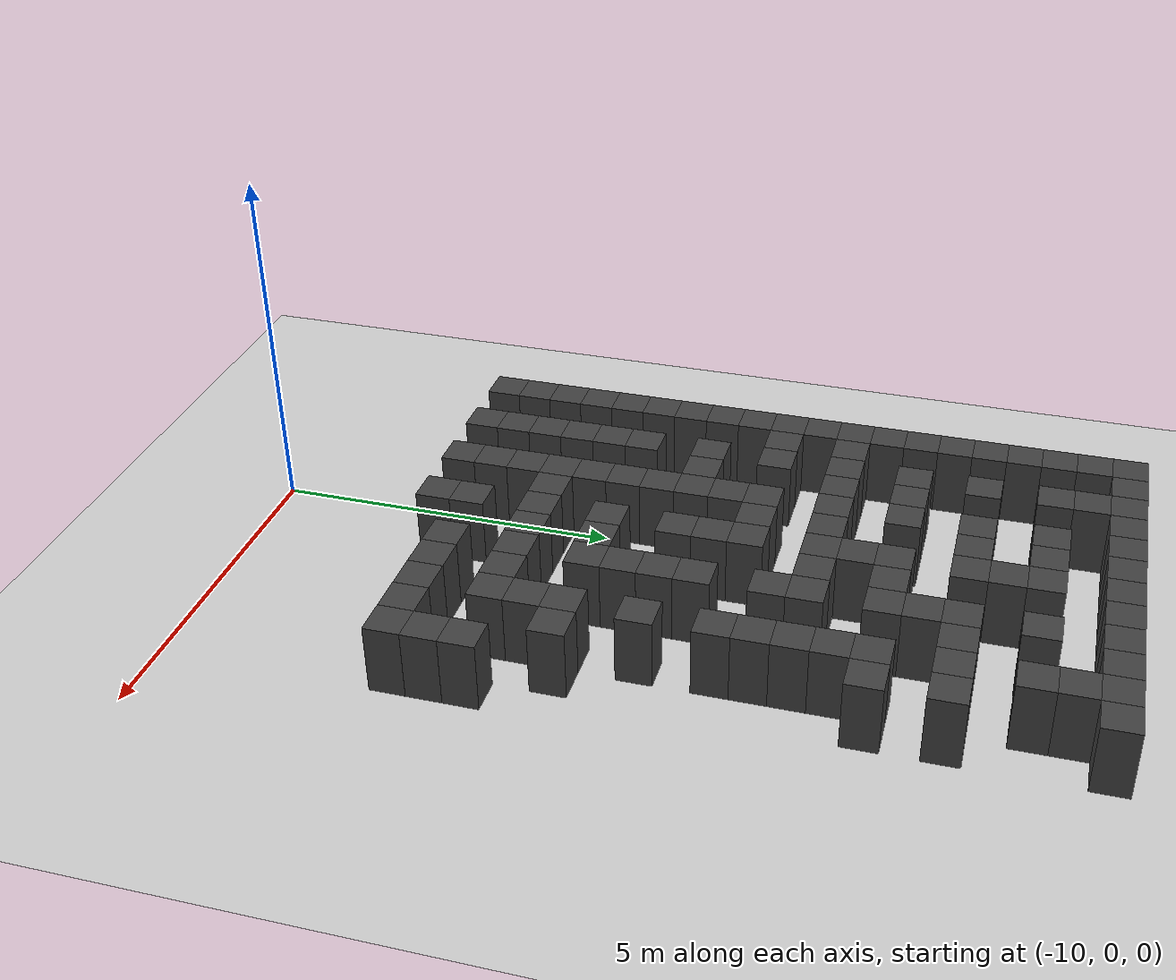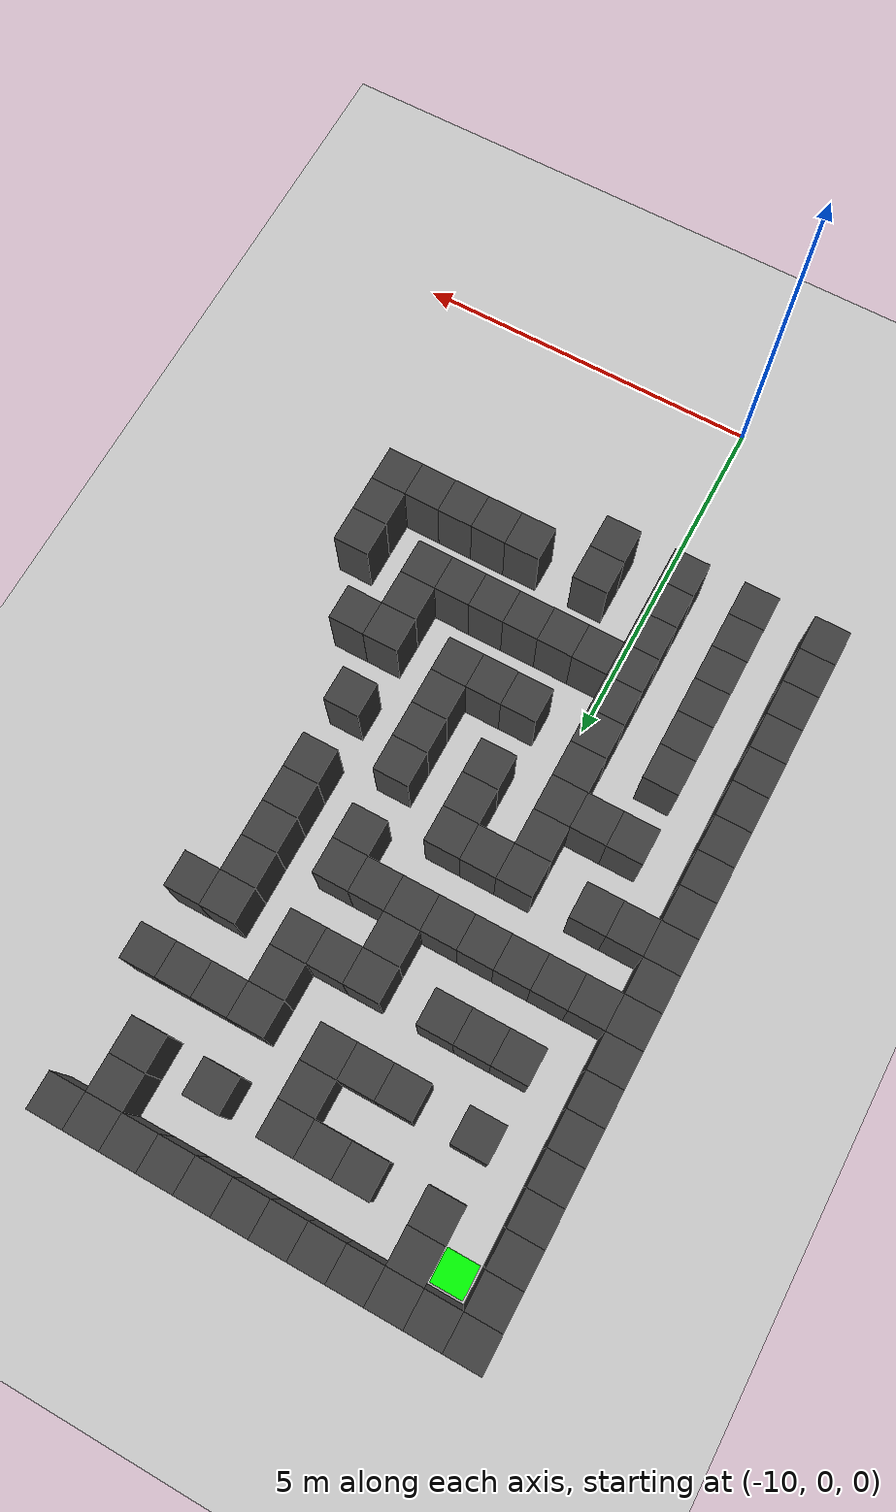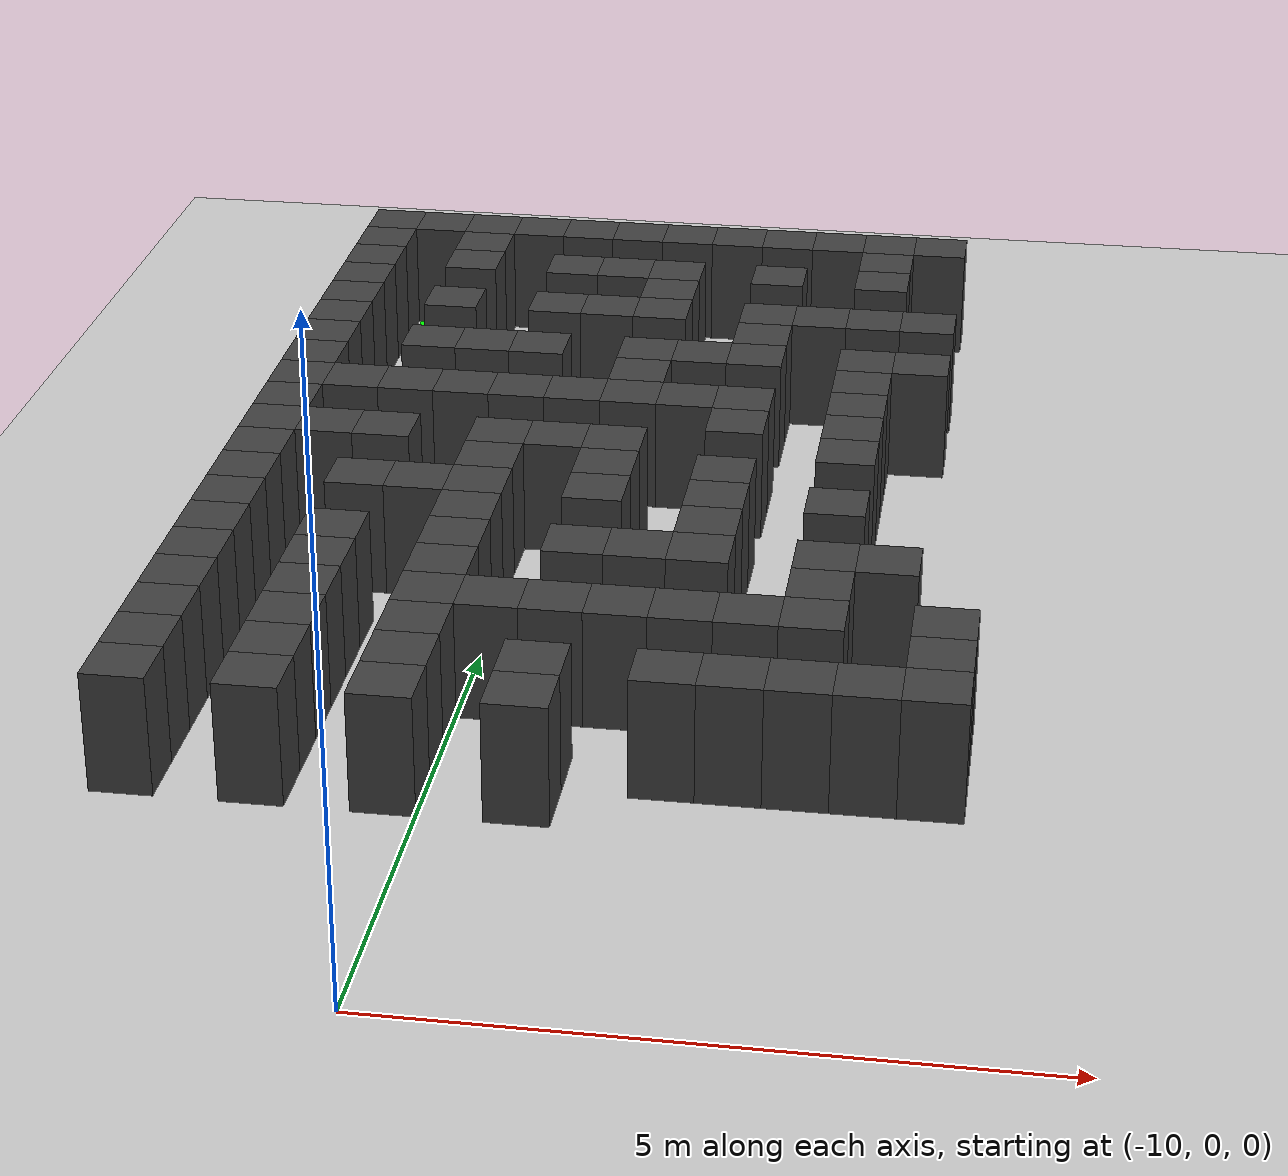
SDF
<sdf version="1.7">
 <world name="map_15168">
  <model name="ground_plane">
   <static>true</static>
   <link name="link">
    <collision name="collision">
     <geometry><plane><normal>0 0 1</normal><size>200 200</size></plane></geometry>
    </collision>
    <visual name="visual">
     <geometry><plane><normal>0 0 1</normal><size>200 200</size></plane></geometry>
     <material><ambient>0.8 0.8 0.8 1</ambient><diffuse>0.8 0.8 0.8 1</diffuse></material>
    </visual>
   </link>
  </model>
  <model name="maze_environment">
   <static>true</static>
   <link name="wall_0">
    <pose>-12.250 12.250 0.500 0 0 0</pose>
    <collision name="col"><geometry><box><size>0.5 0.5 1.0</size></box></geometry></collision>
    <visual name="vis">
     <geometry><box><size>0.5 0.5 1.0</size></box></geometry>
     <material><ambient>0.15 0.15 0.15 1</ambient><diffuse>0.25 0.25 0.25 1</diffuse></material>
    </visual>
   </link>
   <link name="wall_1">
    <pose>-11.750 12.250 0.500 0 0 0</pose>
    <collision name="col"><geometry><box><size>0.5 0.5 1.0</size></box></geometry></collision>
    <visual name="vis">
     <geometry><box><size>0.5 0.5 1.0</size></box></geometry>
     <material><ambient>0.15 0.15 0.15 1</ambient><diffuse>0.25 0.25 0.25 1</diffuse></material>
    </visual>
   </link>
   <link name="wall_2">
    <pose>-11.250 12.250 0.500 0 0 0</pose>
    <collision name="col"><geometry><box><size>0.5 0.5 1.0</size></box></geometry></collision>
    <visual name="vis">
     <geometry><box><size>0.5 0.5 1.0</size></box></geometry>
     <material><ambient>0.15 0.15 0.15 1</ambient><diffuse>0.25 0.25 0.25 1</diffuse></material>
    </visual>
   </link>
   <link name="wall_3">
    <pose>-10.750 12.250 0.500 0 0 0</pose>
    <collision name="col"><geometry><box><size>0.5 0.5 1.0</size></box></geometry></collision>
    <visual name="vis">
     <geometry><box><size>0.5 0.5 1.0</size></box></geometry>
     <material><ambient>0.15 0.15 0.15 1</ambient><diffuse>0.25 0.25 0.25 1</diffuse></material>
    </visual>
   </link>
   <link name="wall_4">
    <pose>-10.250 12.250 0.500 0 0 0</pose>
    <collision name="col"><geometry><box><size>0.5 0.5 1.0</size></box></geometry></collision>
    <visual name="vis">
     <geometry><box><size>0.5 0.5 1.0</size></box></geometry>
     <material><ambient>0.15 0.15 0.15 1</ambient><diffuse>0.25 0.25 0.25 1</diffuse></material>
    </visual>
   </link>
   <link name="wall_5">
    <pose>-9.750 12.250 0.500 0 0 0</pose>
    <collision name="col"><geometry><box><size>0.5 0.5 1.0</size></box></geometry></collision>
    <visual name="vis">
     <geometry><box><size>0.5 0.5 1.0</size></box></geometry>
     <material><ambient>0.15 0.15 0.15 1</ambient><diffuse>0.25 0.25 0.25 1</diffuse></material>
    </visual>
   </link>
   <link name="wall_6">
    <pose>-9.250 12.250 0.500 0 0 0</pose>
    <collision name="col"><geometry><box><size>0.5 0.5 1.0</size></box></geometry></collision>
    <visual name="vis">
     <geometry><box><size>0.5 0.5 1.0</size></box></geometry>
     <material><ambient>0.15 0.15 0.15 1</ambient><diffuse>0.25 0.25 0.25 1</diffuse></material>
    </visual>
   </link>
   <link name="wall_7">
    <pose>-8.750 12.250 0.500 0 0 0</pose>
    <collision name="col"><geometry><box><size>0.5 0.5 1.0</size></box></geometry></collision>
    <visual name="vis">
     <geometry><box><size>0.5 0.5 1.0</size></box></geometry>
     <material><ambient>0.15 0.15 0.15 1</ambient><diffuse>0.25 0.25 0.25 1</diffuse></material>
    </visual>
   </link>
   <link name="wall_8">
    <pose>-8.250 12.250 0.500 0 0 0</pose>
    <collision name="col"><geometry><box><size>0.5 0.5 1.0</size></box></geometry></collision>
    <visual name="vis">
     <geometry><box><size>0.5 0.5 1.0</size></box></geometry>
     <material><ambient>0.15 0.15 0.15 1</ambient><diffuse>0.25 0.25 0.25 1</diffuse></material>
    </visual>
   </link>
   <link name="wall_9">
    <pose>-7.750 12.250 0.500 0 0 0</pose>
    <collision name="col"><geometry><box><size>0.5 0.5 1.0</size></box></geometry></collision>
    <visual name="vis">
     <geometry><box><size>0.5 0.5 1.0</size></box></geometry>
     <material><ambient>0.15 0.15 0.15 1</ambient><diffuse>0.25 0.25 0.25 1</diffuse></material>
    </visual>
   </link>
   <link name="wall_10">
    <pose>-7.250 12.250 0.500 0 0 0</pose>
    <collision name="col"><geometry><box><size>0.5 0.5 1.0</size></box></geometry></collision>
    <visual name="vis">
     <geometry><box><size>0.5 0.5 1.0</size></box></geometry>
     <material><ambient>0.15 0.15 0.15 1</ambient><diffuse>0.25 0.25 0.25 1</diffuse></material>
    </visual>
   </link>
   <link name="wall_11">
    <pose>-6.750 12.250 0.500 0 0 0</pose>
    <collision name="col"><geometry><box><size>0.5 0.5 1.0</size></box></geometry></collision>
    <visual name="vis">
     <geometry><box><size>0.5 0.5 1.0</size></box></geometry>
     <material><ambient>0.15 0.15 0.15 1</ambient><diffuse>0.25 0.25 0.25 1</diffuse></material>
    </visual>
   </link>
   <link name="wall_50">
    <pose>-12.250 11.750 0.500 0 0 0</pose>
    <collision name="col"><geometry><box><size>0.5 0.5 1.0</size></box></geometry></collision>
    <visual name="vis">
     <geometry><box><size>0.5 0.5 1.0</size></box></geometry>
     <material><ambient>0.15 0.15 0.15 1</ambient><diffuse>0.25 0.25 0.25 1</diffuse></material>
    </visual>
   </link>
   <link name="wall_51">
    <pose>-11.250 11.750 0.500 0 0 0</pose>
    <collision name="col"><geometry><box><size>0.5 0.5 1.0</size></box></geometry></collision>
    <visual name="vis">
     <geometry><box><size>0.5 0.5 1.0</size></box></geometry>
     <material><ambient>0.15 0.15 0.15 1</ambient><diffuse>0.25 0.25 0.25 1</diffuse></material>
    </visual>
   </link>
   <link name="wall_52">
    <pose>-7.250 11.750 0.500 0 0 0</pose>
    <collision name="col"><geometry><box><size>0.5 0.5 1.0</size></box></geometry></collision>
    <visual name="vis">
     <geometry><box><size>0.5 0.5 1.0</size></box></geometry>
     <material><ambient>0.15 0.15 0.15 1</ambient><diffuse>0.25 0.25 0.25 1</diffuse></material>
    </visual>
   </link>
   <link name="wall_60">
    <pose>-12.250 11.250 0.500 0 0 0</pose>
    <collision name="col"><geometry><box><size>0.5 0.5 1.0</size></box></geometry></collision>
    <visual name="vis">
     <geometry><box><size>0.5 0.5 1.0</size></box></geometry>
     <material><ambient>0.15 0.15 0.15 1</ambient><diffuse>0.25 0.25 0.25 1</diffuse></material>
    </visual>
   </link>
   <link name="wall_61">
    <pose>-11.250 11.250 0.500 0 0 0</pose>
    <collision name="col"><geometry><box><size>0.5 0.5 1.0</size></box></geometry></collision>
    <visual name="vis">
     <geometry><box><size>0.5 0.5 1.0</size></box></geometry>
     <material><ambient>0.15 0.15 0.15 1</ambient><diffuse>0.25 0.25 0.25 1</diffuse></material>
    </visual>
   </link>
   <link name="wall_62">
    <pose>-10.250 11.250 0.500 0 0 0</pose>
    <collision name="col"><geometry><box><size>0.5 0.5 1.0</size></box></geometry></collision>
    <visual name="vis">
     <geometry><box><size>0.5 0.5 1.0</size></box></geometry>
     <material><ambient>0.15 0.15 0.15 1</ambient><diffuse>0.25 0.25 0.25 1</diffuse></material>
    </visual>
   </link>
   <link name="wall_63">
    <pose>-9.750 11.250 0.500 0 0 0</pose>
    <collision name="col"><geometry><box><size>0.5 0.5 1.0</size></box></geometry></collision>
    <visual name="vis">
     <geometry><box><size>0.5 0.5 1.0</size></box></geometry>
     <material><ambient>0.15 0.15 0.15 1</ambient><diffuse>0.25 0.25 0.25 1</diffuse></material>
    </visual>
   </link>
   <link name="wall_64">
    <pose>-9.250 11.250 0.500 0 0 0</pose>
    <collision name="col"><geometry><box><size>0.5 0.5 1.0</size></box></geometry></collision>
    <visual name="vis">
     <geometry><box><size>0.5 0.5 1.0</size></box></geometry>
     <material><ambient>0.15 0.15 0.15 1</ambient><diffuse>0.25 0.25 0.25 1</diffuse></material>
    </visual>
   </link>
   <link name="wall_65">
    <pose>-8.250 11.250 0.500 0 0 0</pose>
    <collision name="col"><geometry><box><size>0.5 0.5 1.0</size></box></geometry></collision>
    <visual name="vis">
     <geometry><box><size>0.5 0.5 1.0</size></box></geometry>
     <material><ambient>0.15 0.15 0.15 1</ambient><diffuse>0.25 0.25 0.25 1</diffuse></material>
    </visual>
   </link>
   <link name="wall_66">
    <pose>-7.250 11.250 0.500 0 0 0</pose>
    <collision name="col"><geometry><box><size>0.5 0.5 1.0</size></box></geometry></collision>
    <visual name="vis">
     <geometry><box><size>0.5 0.5 1.0</size></box></geometry>
     <material><ambient>0.15 0.15 0.15 1</ambient><diffuse>0.25 0.25 0.25 1</diffuse></material>
    </visual>
   </link>
   <link name="wall_91">
    <pose>-12.250 10.750 0.500 0 0 0</pose>
    <collision name="col"><geometry><box><size>0.5 0.5 1.0</size></box></geometry></collision>
    <visual name="vis">
     <geometry><box><size>0.5 0.5 1.0</size></box></geometry>
     <material><ambient>0.15 0.15 0.15 1</ambient><diffuse>0.25 0.25 0.25 1</diffuse></material>
    </visual>
   </link>
   <link name="wall_92">
    <pose>-9.250 10.750 0.500 0 0 0</pose>
    <collision name="col"><geometry><box><size>0.5 0.5 1.0</size></box></geometry></collision>
    <visual name="vis">
     <geometry><box><size>0.5 0.5 1.0</size></box></geometry>
     <material><ambient>0.15 0.15 0.15 1</ambient><diffuse>0.25 0.25 0.25 1</diffuse></material>
    </visual>
   </link>
   <link name="wall_105">
    <pose>-12.250 10.250 0.500 0 0 0</pose>
    <collision name="col"><geometry><box><size>0.5 0.5 1.0</size></box></geometry></collision>
    <visual name="vis">
     <geometry><box><size>0.5 0.5 1.0</size></box></geometry>
     <material><ambient>0.15 0.15 0.15 1</ambient><diffuse>0.25 0.25 0.25 1</diffuse></material>
    </visual>
   </link>
   <link name="wall_106">
    <pose>-11.250 10.250 0.500 0 0 0</pose>
    <collision name="col"><geometry><box><size>0.5 0.5 1.0</size></box></geometry></collision>
    <visual name="vis">
     <geometry><box><size>0.5 0.5 1.0</size></box></geometry>
     <material><ambient>0.15 0.15 0.15 1</ambient><diffuse>0.25 0.25 0.25 1</diffuse></material>
    </visual>
   </link>
   <link name="wall_107">
    <pose>-10.250 10.250 0.500 0 0 0</pose>
    <collision name="col"><geometry><box><size>0.5 0.5 1.0</size></box></geometry></collision>
    <visual name="vis">
     <geometry><box><size>0.5 0.5 1.0</size></box></geometry>
     <material><ambient>0.15 0.15 0.15 1</ambient><diffuse>0.25 0.25 0.25 1</diffuse></material>
    </visual>
   </link>
   <link name="wall_108">
    <pose>-9.750 10.250 0.500 0 0 0</pose>
    <collision name="col"><geometry><box><size>0.5 0.5 1.0</size></box></geometry></collision>
    <visual name="vis">
     <geometry><box><size>0.5 0.5 1.0</size></box></geometry>
     <material><ambient>0.15 0.15 0.15 1</ambient><diffuse>0.25 0.25 0.25 1</diffuse></material>
    </visual>
   </link>
   <link name="wall_109">
    <pose>-9.250 10.250 0.500 0 0 0</pose>
    <collision name="col"><geometry><box><size>0.5 0.5 1.0</size></box></geometry></collision>
    <visual name="vis">
     <geometry><box><size>0.5 0.5 1.0</size></box></geometry>
     <material><ambient>0.15 0.15 0.15 1</ambient><diffuse>0.25 0.25 0.25 1</diffuse></material>
    </visual>
   </link>
   <link name="wall_110">
    <pose>-8.250 10.250 0.500 0 0 0</pose>
    <collision name="col"><geometry><box><size>0.5 0.5 1.0</size></box></geometry></collision>
    <visual name="vis">
     <geometry><box><size>0.5 0.5 1.0</size></box></geometry>
     <material><ambient>0.15 0.15 0.15 1</ambient><diffuse>0.25 0.25 0.25 1</diffuse></material>
    </visual>
   </link>
   <link name="wall_111">
    <pose>-7.750 10.250 0.500 0 0 0</pose>
    <collision name="col"><geometry><box><size>0.5 0.5 1.0</size></box></geometry></collision>
    <visual name="vis">
     <geometry><box><size>0.5 0.5 1.0</size></box></geometry>
     <material><ambient>0.15 0.15 0.15 1</ambient><diffuse>0.25 0.25 0.25 1</diffuse></material>
    </visual>
   </link>
   <link name="wall_112">
    <pose>-7.250 10.250 0.500 0 0 0</pose>
    <collision name="col"><geometry><box><size>0.5 0.5 1.0</size></box></geometry></collision>
    <visual name="vis">
     <geometry><box><size>0.5 0.5 1.0</size></box></geometry>
     <material><ambient>0.15 0.15 0.15 1</ambient><diffuse>0.25 0.25 0.25 1</diffuse></material>
    </visual>
   </link>
   <link name="wall_113">
    <pose>-6.750 10.250 0.500 0 0 0</pose>
    <collision name="col"><geometry><box><size>0.5 0.5 1.0</size></box></geometry></collision>
    <visual name="vis">
     <geometry><box><size>0.5 0.5 1.0</size></box></geometry>
     <material><ambient>0.15 0.15 0.15 1</ambient><diffuse>0.25 0.25 0.25 1</diffuse></material>
    </visual>
   </link>
   <link name="wall_139">
    <pose>-12.250 9.750 0.500 0 0 0</pose>
    <collision name="col"><geometry><box><size>0.5 0.5 1.0</size></box></geometry></collision>
    <visual name="vis">
     <geometry><box><size>0.5 0.5 1.0</size></box></geometry>
     <material><ambient>0.15 0.15 0.15 1</ambient><diffuse>0.25 0.25 0.25 1</diffuse></material>
    </visual>
   </link>
   <link name="wall_140">
    <pose>-8.250 9.750 0.500 0 0 0</pose>
    <collision name="col"><geometry><box><size>0.5 0.5 1.0</size></box></geometry></collision>
    <visual name="vis">
     <geometry><box><size>0.5 0.5 1.0</size></box></geometry>
     <material><ambient>0.15 0.15 0.15 1</ambient><diffuse>0.25 0.25 0.25 1</diffuse></material>
    </visual>
   </link>
   <link name="wall_152">
    <pose>-12.250 9.250 0.500 0 0 0</pose>
    <collision name="col"><geometry><box><size>0.5 0.5 1.0</size></box></geometry></collision>
    <visual name="vis">
     <geometry><box><size>0.5 0.5 1.0</size></box></geometry>
     <material><ambient>0.15 0.15 0.15 1</ambient><diffuse>0.25 0.25 0.25 1</diffuse></material>
    </visual>
   </link>
   <link name="wall_153">
    <pose>-11.250 9.250 0.500 0 0 0</pose>
    <collision name="col"><geometry><box><size>0.5 0.5 1.0</size></box></geometry></collision>
    <visual name="vis">
     <geometry><box><size>0.5 0.5 1.0</size></box></geometry>
     <material><ambient>0.15 0.15 0.15 1</ambient><diffuse>0.25 0.25 0.25 1</diffuse></material>
    </visual>
   </link>
   <link name="wall_154">
    <pose>-10.750 9.250 0.500 0 0 0</pose>
    <collision name="col"><geometry><box><size>0.5 0.5 1.0</size></box></geometry></collision>
    <visual name="vis">
     <geometry><box><size>0.5 0.5 1.0</size></box></geometry>
     <material><ambient>0.15 0.15 0.15 1</ambient><diffuse>0.25 0.25 0.25 1</diffuse></material>
    </visual>
   </link>
   <link name="wall_155">
    <pose>-10.250 9.250 0.500 0 0 0</pose>
    <collision name="col"><geometry><box><size>0.5 0.5 1.0</size></box></geometry></collision>
    <visual name="vis">
     <geometry><box><size>0.5 0.5 1.0</size></box></geometry>
     <material><ambient>0.15 0.15 0.15 1</ambient><diffuse>0.25 0.25 0.25 1</diffuse></material>
    </visual>
   </link>
   <link name="wall_156">
    <pose>-9.250 9.250 0.500 0 0 0</pose>
    <collision name="col"><geometry><box><size>0.5 0.5 1.0</size></box></geometry></collision>
    <visual name="vis">
     <geometry><box><size>0.5 0.5 1.0</size></box></geometry>
     <material><ambient>0.15 0.15 0.15 1</ambient><diffuse>0.25 0.25 0.25 1</diffuse></material>
    </visual>
   </link>
   <link name="wall_157">
    <pose>-8.750 9.250 0.500 0 0 0</pose>
    <collision name="col"><geometry><box><size>0.5 0.5 1.0</size></box></geometry></collision>
    <visual name="vis">
     <geometry><box><size>0.5 0.5 1.0</size></box></geometry>
     <material><ambient>0.15 0.15 0.15 1</ambient><diffuse>0.25 0.25 0.25 1</diffuse></material>
    </visual>
   </link>
   <link name="wall_158">
    <pose>-8.250 9.250 0.500 0 0 0</pose>
    <collision name="col"><geometry><box><size>0.5 0.5 1.0</size></box></geometry></collision>
    <visual name="vis">
     <geometry><box><size>0.5 0.5 1.0</size></box></geometry>
     <material><ambient>0.15 0.15 0.15 1</ambient><diffuse>0.25 0.25 0.25 1</diffuse></material>
    </visual>
   </link>
   <link name="wall_159">
    <pose>-7.250 9.250 0.500 0 0 0</pose>
    <collision name="col"><geometry><box><size>0.5 0.5 1.0</size></box></geometry></collision>
    <visual name="vis">
     <geometry><box><size>0.5 0.5 1.0</size></box></geometry>
     <material><ambient>0.15 0.15 0.15 1</ambient><diffuse>0.25 0.25 0.25 1</diffuse></material>
    </visual>
   </link>
   <link name="wall_160">
    <pose>-6.750 9.250 0.500 0 0 0</pose>
    <collision name="col"><geometry><box><size>0.5 0.5 1.0</size></box></geometry></collision>
    <visual name="vis">
     <geometry><box><size>0.5 0.5 1.0</size></box></geometry>
     <material><ambient>0.15 0.15 0.15 1</ambient><diffuse>0.25 0.25 0.25 1</diffuse></material>
    </visual>
   </link>
   <link name="wall_189">
    <pose>-12.250 8.750 0.500 0 0 0</pose>
    <collision name="col"><geometry><box><size>0.5 0.5 1.0</size></box></geometry></collision>
    <visual name="vis">
     <geometry><box><size>0.5 0.5 1.0</size></box></geometry>
     <material><ambient>0.15 0.15 0.15 1</ambient><diffuse>0.25 0.25 0.25 1</diffuse></material>
    </visual>
   </link>
   <link name="wall_190">
    <pose>-9.250 8.750 0.500 0 0 0</pose>
    <collision name="col"><geometry><box><size>0.5 0.5 1.0</size></box></geometry></collision>
    <visual name="vis">
     <geometry><box><size>0.5 0.5 1.0</size></box></geometry>
     <material><ambient>0.15 0.15 0.15 1</ambient><diffuse>0.25 0.25 0.25 1</diffuse></material>
    </visual>
   </link>
   <link name="wall_191">
    <pose>-7.250 8.750 0.500 0 0 0</pose>
    <collision name="col"><geometry><box><size>0.5 0.5 1.0</size></box></geometry></collision>
    <visual name="vis">
     <geometry><box><size>0.5 0.5 1.0</size></box></geometry>
     <material><ambient>0.15 0.15 0.15 1</ambient><diffuse>0.25 0.25 0.25 1</diffuse></material>
    </visual>
   </link>
   <link name="wall_200">
    <pose>-12.250 8.250 0.500 0 0 0</pose>
    <collision name="col"><geometry><box><size>0.5 0.5 1.0</size></box></geometry></collision>
    <visual name="vis">
     <geometry><box><size>0.5 0.5 1.0</size></box></geometry>
     <material><ambient>0.15 0.15 0.15 1</ambient><diffuse>0.25 0.25 0.25 1</diffuse></material>
    </visual>
   </link>
   <link name="wall_201">
    <pose>-11.750 8.250 0.500 0 0 0</pose>
    <collision name="col"><geometry><box><size>0.5 0.5 1.0</size></box></geometry></collision>
    <visual name="vis">
     <geometry><box><size>0.5 0.5 1.0</size></box></geometry>
     <material><ambient>0.15 0.15 0.15 1</ambient><diffuse>0.25 0.25 0.25 1</diffuse></material>
    </visual>
   </link>
   <link name="wall_202">
    <pose>-11.250 8.250 0.500 0 0 0</pose>
    <collision name="col"><geometry><box><size>0.5 0.5 1.0</size></box></geometry></collision>
    <visual name="vis">
     <geometry><box><size>0.5 0.5 1.0</size></box></geometry>
     <material><ambient>0.15 0.15 0.15 1</ambient><diffuse>0.25 0.25 0.25 1</diffuse></material>
    </visual>
   </link>
   <link name="wall_203">
    <pose>-10.750 8.250 0.500 0 0 0</pose>
    <collision name="col"><geometry><box><size>0.5 0.5 1.0</size></box></geometry></collision>
    <visual name="vis">
     <geometry><box><size>0.5 0.5 1.0</size></box></geometry>
     <material><ambient>0.15 0.15 0.15 1</ambient><diffuse>0.25 0.25 0.25 1</diffuse></material>
    </visual>
   </link>
   <link name="wall_204">
    <pose>-10.250 8.250 0.500 0 0 0</pose>
    <collision name="col"><geometry><box><size>0.5 0.5 1.0</size></box></geometry></collision>
    <visual name="vis">
     <geometry><box><size>0.5 0.5 1.0</size></box></geometry>
     <material><ambient>0.15 0.15 0.15 1</ambient><diffuse>0.25 0.25 0.25 1</diffuse></material>
    </visual>
   </link>
   <link name="wall_205">
    <pose>-9.750 8.250 0.500 0 0 0</pose>
    <collision name="col"><geometry><box><size>0.5 0.5 1.0</size></box></geometry></collision>
    <visual name="vis">
     <geometry><box><size>0.5 0.5 1.0</size></box></geometry>
     <material><ambient>0.15 0.15 0.15 1</ambient><diffuse>0.25 0.25 0.25 1</diffuse></material>
    </visual>
   </link>
   <link name="wall_206">
    <pose>-9.250 8.250 0.500 0 0 0</pose>
    <collision name="col"><geometry><box><size>0.5 0.5 1.0</size></box></geometry></collision>
    <visual name="vis">
     <geometry><box><size>0.5 0.5 1.0</size></box></geometry>
     <material><ambient>0.15 0.15 0.15 1</ambient><diffuse>0.25 0.25 0.25 1</diffuse></material>
    </visual>
   </link>
   <link name="wall_207">
    <pose>-8.750 8.250 0.500 0 0 0</pose>
    <collision name="col"><geometry><box><size>0.5 0.5 1.0</size></box></geometry></collision>
    <visual name="vis">
     <geometry><box><size>0.5 0.5 1.0</size></box></geometry>
     <material><ambient>0.15 0.15 0.15 1</ambient><diffuse>0.25 0.25 0.25 1</diffuse></material>
    </visual>
   </link>
   <link name="wall_208">
    <pose>-8.250 8.250 0.500 0 0 0</pose>
    <collision name="col"><geometry><box><size>0.5 0.5 1.0</size></box></geometry></collision>
    <visual name="vis">
     <geometry><box><size>0.5 0.5 1.0</size></box></geometry>
     <material><ambient>0.15 0.15 0.15 1</ambient><diffuse>0.25 0.25 0.25 1</diffuse></material>
    </visual>
   </link>
   <link name="wall_209">
    <pose>-7.250 8.250 0.500 0 0 0</pose>
    <collision name="col"><geometry><box><size>0.5 0.5 1.0</size></box></geometry></collision>
    <visual name="vis">
     <geometry><box><size>0.5 0.5 1.0</size></box></geometry>
     <material><ambient>0.15 0.15 0.15 1</ambient><diffuse>0.25 0.25 0.25 1</diffuse></material>
    </visual>
   </link>
   <link name="wall_232">
    <pose>-12.250 7.750 0.500 0 0 0</pose>
    <collision name="col"><geometry><box><size>0.5 0.5 1.0</size></box></geometry></collision>
    <visual name="vis">
     <geometry><box><size>0.5 0.5 1.0</size></box></geometry>
     <material><ambient>0.15 0.15 0.15 1</ambient><diffuse>0.25 0.25 0.25 1</diffuse></material>
    </visual>
   </link>
   <link name="wall_233">
    <pose>-8.250 7.750 0.500 0 0 0</pose>
    <collision name="col"><geometry><box><size>0.5 0.5 1.0</size></box></geometry></collision>
    <visual name="vis">
     <geometry><box><size>0.5 0.5 1.0</size></box></geometry>
     <material><ambient>0.15 0.15 0.15 1</ambient><diffuse>0.25 0.25 0.25 1</diffuse></material>
    </visual>
   </link>
   <link name="wall_234">
    <pose>-7.250 7.750 0.500 0 0 0</pose>
    <collision name="col"><geometry><box><size>0.5 0.5 1.0</size></box></geometry></collision>
    <visual name="vis">
     <geometry><box><size>0.5 0.5 1.0</size></box></geometry>
     <material><ambient>0.15 0.15 0.15 1</ambient><diffuse>0.25 0.25 0.25 1</diffuse></material>
    </visual>
   </link>
   <link name="wall_245">
    <pose>-12.250 7.250 0.500 0 0 0</pose>
    <collision name="col"><geometry><box><size>0.5 0.5 1.0</size></box></geometry></collision>
    <visual name="vis">
     <geometry><box><size>0.5 0.5 1.0</size></box></geometry>
     <material><ambient>0.15 0.15 0.15 1</ambient><diffuse>0.25 0.25 0.25 1</diffuse></material>
    </visual>
   </link>
   <link name="wall_246">
    <pose>-11.750 7.250 0.500 0 0 0</pose>
    <collision name="col"><geometry><box><size>0.5 0.5 1.0</size></box></geometry></collision>
    <visual name="vis">
     <geometry><box><size>0.5 0.5 1.0</size></box></geometry>
     <material><ambient>0.15 0.15 0.15 1</ambient><diffuse>0.25 0.25 0.25 1</diffuse></material>
    </visual>
   </link>
   <link name="wall_247">
    <pose>-11.250 7.250 0.500 0 0 0</pose>
    <collision name="col"><geometry><box><size>0.5 0.5 1.0</size></box></geometry></collision>
    <visual name="vis">
     <geometry><box><size>0.5 0.5 1.0</size></box></geometry>
     <material><ambient>0.15 0.15 0.15 1</ambient><diffuse>0.25 0.25 0.25 1</diffuse></material>
    </visual>
   </link>
   <link name="wall_248">
    <pose>-10.250 7.250 0.500 0 0 0</pose>
    <collision name="col"><geometry><box><size>0.5 0.5 1.0</size></box></geometry></collision>
    <visual name="vis">
     <geometry><box><size>0.5 0.5 1.0</size></box></geometry>
     <material><ambient>0.15 0.15 0.15 1</ambient><diffuse>0.25 0.25 0.25 1</diffuse></material>
    </visual>
   </link>
   <link name="wall_249">
    <pose>-9.750 7.250 0.500 0 0 0</pose>
    <collision name="col"><geometry><box><size>0.5 0.5 1.0</size></box></geometry></collision>
    <visual name="vis">
     <geometry><box><size>0.5 0.5 1.0</size></box></geometry>
     <material><ambient>0.15 0.15 0.15 1</ambient><diffuse>0.25 0.25 0.25 1</diffuse></material>
    </visual>
   </link>
   <link name="wall_250">
    <pose>-9.250 7.250 0.500 0 0 0</pose>
    <collision name="col"><geometry><box><size>0.5 0.5 1.0</size></box></geometry></collision>
    <visual name="vis">
     <geometry><box><size>0.5 0.5 1.0</size></box></geometry>
     <material><ambient>0.15 0.15 0.15 1</ambient><diffuse>0.25 0.25 0.25 1</diffuse></material>
    </visual>
   </link>
   <link name="wall_251">
    <pose>-7.250 7.250 0.500 0 0 0</pose>
    <collision name="col"><geometry><box><size>0.5 0.5 1.0</size></box></geometry></collision>
    <visual name="vis">
     <geometry><box><size>0.5 0.5 1.0</size></box></geometry>
     <material><ambient>0.15 0.15 0.15 1</ambient><diffuse>0.25 0.25 0.25 1</diffuse></material>
    </visual>
   </link>
   <link name="wall_277">
    <pose>-12.250 6.750 0.500 0 0 0</pose>
    <collision name="col"><geometry><box><size>0.5 0.5 1.0</size></box></geometry></collision>
    <visual name="vis">
     <geometry><box><size>0.5 0.5 1.0</size></box></geometry>
     <material><ambient>0.15 0.15 0.15 1</ambient><diffuse>0.25 0.25 0.25 1</diffuse></material>
    </visual>
   </link>
   <link name="wall_278">
    <pose>-10.250 6.750 0.500 0 0 0</pose>
    <collision name="col"><geometry><box><size>0.5 0.5 1.0</size></box></geometry></collision>
    <visual name="vis">
     <geometry><box><size>0.5 0.5 1.0</size></box></geometry>
     <material><ambient>0.15 0.15 0.15 1</ambient><diffuse>0.25 0.25 0.25 1</diffuse></material>
    </visual>
   </link>
   <link name="wall_279">
    <pose>-9.250 6.750 0.500 0 0 0</pose>
    <collision name="col"><geometry><box><size>0.5 0.5 1.0</size></box></geometry></collision>
    <visual name="vis">
     <geometry><box><size>0.5 0.5 1.0</size></box></geometry>
     <material><ambient>0.15 0.15 0.15 1</ambient><diffuse>0.25 0.25 0.25 1</diffuse></material>
    </visual>
   </link>
   <link name="wall_280">
    <pose>-8.250 6.750 0.500 0 0 0</pose>
    <collision name="col"><geometry><box><size>0.5 0.5 1.0</size></box></geometry></collision>
    <visual name="vis">
     <geometry><box><size>0.5 0.5 1.0</size></box></geometry>
     <material><ambient>0.15 0.15 0.15 1</ambient><diffuse>0.25 0.25 0.25 1</diffuse></material>
    </visual>
   </link>
   <link name="wall_291">
    <pose>-12.250 6.250 0.500 0 0 0</pose>
    <collision name="col"><geometry><box><size>0.5 0.5 1.0</size></box></geometry></collision>
    <visual name="vis">
     <geometry><box><size>0.5 0.5 1.0</size></box></geometry>
     <material><ambient>0.15 0.15 0.15 1</ambient><diffuse>0.25 0.25 0.25 1</diffuse></material>
    </visual>
   </link>
   <link name="wall_292">
    <pose>-11.250 6.250 0.500 0 0 0</pose>
    <collision name="col"><geometry><box><size>0.5 0.5 1.0</size></box></geometry></collision>
    <visual name="vis">
     <geometry><box><size>0.5 0.5 1.0</size></box></geometry>
     <material><ambient>0.15 0.15 0.15 1</ambient><diffuse>0.25 0.25 0.25 1</diffuse></material>
    </visual>
   </link>
   <link name="wall_293">
    <pose>-10.750 6.250 0.500 0 0 0</pose>
    <collision name="col"><geometry><box><size>0.5 0.5 1.0</size></box></geometry></collision>
    <visual name="vis">
     <geometry><box><size>0.5 0.5 1.0</size></box></geometry>
     <material><ambient>0.15 0.15 0.15 1</ambient><diffuse>0.25 0.25 0.25 1</diffuse></material>
    </visual>
   </link>
   <link name="wall_294">
    <pose>-10.250 6.250 0.500 0 0 0</pose>
    <collision name="col"><geometry><box><size>0.5 0.5 1.0</size></box></geometry></collision>
    <visual name="vis">
     <geometry><box><size>0.5 0.5 1.0</size></box></geometry>
     <material><ambient>0.15 0.15 0.15 1</ambient><diffuse>0.25 0.25 0.25 1</diffuse></material>
    </visual>
   </link>
   <link name="wall_295">
    <pose>-9.250 6.250 0.500 0 0 0</pose>
    <collision name="col"><geometry><box><size>0.5 0.5 1.0</size></box></geometry></collision>
    <visual name="vis">
     <geometry><box><size>0.5 0.5 1.0</size></box></geometry>
     <material><ambient>0.15 0.15 0.15 1</ambient><diffuse>0.25 0.25 0.25 1</diffuse></material>
    </visual>
   </link>
   <link name="wall_296">
    <pose>-8.250 6.250 0.500 0 0 0</pose>
    <collision name="col"><geometry><box><size>0.5 0.5 1.0</size></box></geometry></collision>
    <visual name="vis">
     <geometry><box><size>0.5 0.5 1.0</size></box></geometry>
     <material><ambient>0.15 0.15 0.15 1</ambient><diffuse>0.25 0.25 0.25 1</diffuse></material>
    </visual>
   </link>
   <link name="wall_297">
    <pose>-7.250 6.250 0.500 0 0 0</pose>
    <collision name="col"><geometry><box><size>0.5 0.5 1.0</size></box></geometry></collision>
    <visual name="vis">
     <geometry><box><size>0.5 0.5 1.0</size></box></geometry>
     <material><ambient>0.15 0.15 0.15 1</ambient><diffuse>0.25 0.25 0.25 1</diffuse></material>
    </visual>
   </link>
   <link name="wall_322">
    <pose>-12.250 5.750 0.500 0 0 0</pose>
    <collision name="col"><geometry><box><size>0.5 0.5 1.0</size></box></geometry></collision>
    <visual name="vis">
     <geometry><box><size>0.5 0.5 1.0</size></box></geometry>
     <material><ambient>0.15 0.15 0.15 1</ambient><diffuse>0.25 0.25 0.25 1</diffuse></material>
    </visual>
   </link>
   <link name="wall_323">
    <pose>-10.250 5.750 0.500 0 0 0</pose>
    <collision name="col"><geometry><box><size>0.5 0.5 1.0</size></box></geometry></collision>
    <visual name="vis">
     <geometry><box><size>0.5 0.5 1.0</size></box></geometry>
     <material><ambient>0.15 0.15 0.15 1</ambient><diffuse>0.25 0.25 0.25 1</diffuse></material>
    </visual>
   </link>
   <link name="wall_324">
    <pose>-8.250 5.750 0.500 0 0 0</pose>
    <collision name="col"><geometry><box><size>0.5 0.5 1.0</size></box></geometry></collision>
    <visual name="vis">
     <geometry><box><size>0.5 0.5 1.0</size></box></geometry>
     <material><ambient>0.15 0.15 0.15 1</ambient><diffuse>0.25 0.25 0.25 1</diffuse></material>
    </visual>
   </link>
   <link name="wall_334">
    <pose>-12.250 5.250 0.500 0 0 0</pose>
    <collision name="col"><geometry><box><size>0.5 0.5 1.0</size></box></geometry></collision>
    <visual name="vis">
     <geometry><box><size>0.5 0.5 1.0</size></box></geometry>
     <material><ambient>0.15 0.15 0.15 1</ambient><diffuse>0.25 0.25 0.25 1</diffuse></material>
    </visual>
   </link>
   <link name="wall_335">
    <pose>-11.250 5.250 0.500 0 0 0</pose>
    <collision name="col"><geometry><box><size>0.5 0.5 1.0</size></box></geometry></collision>
    <visual name="vis">
     <geometry><box><size>0.5 0.5 1.0</size></box></geometry>
     <material><ambient>0.15 0.15 0.15 1</ambient><diffuse>0.25 0.25 0.25 1</diffuse></material>
    </visual>
   </link>
   <link name="wall_336">
    <pose>-10.250 5.250 0.500 0 0 0</pose>
    <collision name="col"><geometry><box><size>0.5 0.5 1.0</size></box></geometry></collision>
    <visual name="vis">
     <geometry><box><size>0.5 0.5 1.0</size></box></geometry>
     <material><ambient>0.15 0.15 0.15 1</ambient><diffuse>0.25 0.25 0.25 1</diffuse></material>
    </visual>
   </link>
   <link name="wall_337">
    <pose>-9.250 5.250 0.500 0 0 0</pose>
    <collision name="col"><geometry><box><size>0.5 0.5 1.0</size></box></geometry></collision>
    <visual name="vis">
     <geometry><box><size>0.5 0.5 1.0</size></box></geometry>
     <material><ambient>0.15 0.15 0.15 1</ambient><diffuse>0.25 0.25 0.25 1</diffuse></material>
    </visual>
   </link>
   <link name="wall_338">
    <pose>-8.750 5.250 0.500 0 0 0</pose>
    <collision name="col"><geometry><box><size>0.5 0.5 1.0</size></box></geometry></collision>
    <visual name="vis">
     <geometry><box><size>0.5 0.5 1.0</size></box></geometry>
     <material><ambient>0.15 0.15 0.15 1</ambient><diffuse>0.25 0.25 0.25 1</diffuse></material>
    </visual>
   </link>
   <link name="wall_339">
    <pose>-8.250 5.250 0.500 0 0 0</pose>
    <collision name="col"><geometry><box><size>0.5 0.5 1.0</size></box></geometry></collision>
    <visual name="vis">
     <geometry><box><size>0.5 0.5 1.0</size></box></geometry>
     <material><ambient>0.15 0.15 0.15 1</ambient><diffuse>0.25 0.25 0.25 1</diffuse></material>
    </visual>
   </link>
   <link name="wall_340">
    <pose>-7.250 5.250 0.500 0 0 0</pose>
    <collision name="col"><geometry><box><size>0.5 0.5 1.0</size></box></geometry></collision>
    <visual name="vis">
     <geometry><box><size>0.5 0.5 1.0</size></box></geometry>
     <material><ambient>0.15 0.15 0.15 1</ambient><diffuse>0.25 0.25 0.25 1</diffuse></material>
    </visual>
   </link>
   <link name="wall_341">
    <pose>-6.750 5.250 0.500 0 0 0</pose>
    <collision name="col"><geometry><box><size>0.5 0.5 1.0</size></box></geometry></collision>
    <visual name="vis">
     <geometry><box><size>0.5 0.5 1.0</size></box></geometry>
     <material><ambient>0.15 0.15 0.15 1</ambient><diffuse>0.25 0.25 0.25 1</diffuse></material>
    </visual>
   </link>
   <link name="wall_371">
    <pose>-12.250 4.750 0.500 0 0 0</pose>
    <collision name="col"><geometry><box><size>0.5 0.5 1.0</size></box></geometry></collision>
    <visual name="vis">
     <geometry><box><size>0.5 0.5 1.0</size></box></geometry>
     <material><ambient>0.15 0.15 0.15 1</ambient><diffuse>0.25 0.25 0.25 1</diffuse></material>
    </visual>
   </link>
   <link name="wall_372">
    <pose>-11.250 4.750 0.500 0 0 0</pose>
    <collision name="col"><geometry><box><size>0.5 0.5 1.0</size></box></geometry></collision>
    <visual name="vis">
     <geometry><box><size>0.5 0.5 1.0</size></box></geometry>
     <material><ambient>0.15 0.15 0.15 1</ambient><diffuse>0.25 0.25 0.25 1</diffuse></material>
    </visual>
   </link>
   <link name="wall_373">
    <pose>-10.250 4.750 0.500 0 0 0</pose>
    <collision name="col"><geometry><box><size>0.5 0.5 1.0</size></box></geometry></collision>
    <visual name="vis">
     <geometry><box><size>0.5 0.5 1.0</size></box></geometry>
     <material><ambient>0.15 0.15 0.15 1</ambient><diffuse>0.25 0.25 0.25 1</diffuse></material>
    </visual>
   </link>
   <link name="wall_374">
    <pose>-7.250 4.750 0.500 0 0 0</pose>
    <collision name="col"><geometry><box><size>0.5 0.5 1.0</size></box></geometry></collision>
    <visual name="vis">
     <geometry><box><size>0.5 0.5 1.0</size></box></geometry>
     <material><ambient>0.15 0.15 0.15 1</ambient><diffuse>0.25 0.25 0.25 1</diffuse></material>
    </visual>
   </link>
   <link name="wall_379">
    <pose>-12.250 4.250 0.500 0 0 0</pose>
    <collision name="col"><geometry><box><size>0.5 0.5 1.0</size></box></geometry></collision>
    <visual name="vis">
     <geometry><box><size>0.5 0.5 1.0</size></box></geometry>
     <material><ambient>0.15 0.15 0.15 1</ambient><diffuse>0.25 0.25 0.25 1</diffuse></material>
    </visual>
   </link>
   <link name="wall_380">
    <pose>-11.250 4.250 0.500 0 0 0</pose>
    <collision name="col"><geometry><box><size>0.5 0.5 1.0</size></box></geometry></collision>
    <visual name="vis">
     <geometry><box><size>0.5 0.5 1.0</size></box></geometry>
     <material><ambient>0.15 0.15 0.15 1</ambient><diffuse>0.25 0.25 0.25 1</diffuse></material>
    </visual>
   </link>
   <link name="wall_381">
    <pose>-10.250 4.250 0.500 0 0 0</pose>
    <collision name="col"><geometry><box><size>0.5 0.5 1.0</size></box></geometry></collision>
    <visual name="vis">
     <geometry><box><size>0.5 0.5 1.0</size></box></geometry>
     <material><ambient>0.15 0.15 0.15 1</ambient><diffuse>0.25 0.25 0.25 1</diffuse></material>
    </visual>
   </link>
   <link name="wall_382">
    <pose>-9.750 4.250 0.500 0 0 0</pose>
    <collision name="col"><geometry><box><size>0.5 0.5 1.0</size></box></geometry></collision>
    <visual name="vis">
     <geometry><box><size>0.5 0.5 1.0</size></box></geometry>
     <material><ambient>0.15 0.15 0.15 1</ambient><diffuse>0.25 0.25 0.25 1</diffuse></material>
    </visual>
   </link>
   <link name="wall_383">
    <pose>-9.250 4.250 0.500 0 0 0</pose>
    <collision name="col"><geometry><box><size>0.5 0.5 1.0</size></box></geometry></collision>
    <visual name="vis">
     <geometry><box><size>0.5 0.5 1.0</size></box></geometry>
     <material><ambient>0.15 0.15 0.15 1</ambient><diffuse>0.25 0.25 0.25 1</diffuse></material>
    </visual>
   </link>
   <link name="wall_384">
    <pose>-8.750 4.250 0.500 0 0 0</pose>
    <collision name="col"><geometry><box><size>0.5 0.5 1.0</size></box></geometry></collision>
    <visual name="vis">
     <geometry><box><size>0.5 0.5 1.0</size></box></geometry>
     <material><ambient>0.15 0.15 0.15 1</ambient><diffuse>0.25 0.25 0.25 1</diffuse></material>
    </visual>
   </link>
   <link name="wall_385">
    <pose>-8.250 4.250 0.500 0 0 0</pose>
    <collision name="col"><geometry><box><size>0.5 0.5 1.0</size></box></geometry></collision>
    <visual name="vis">
     <geometry><box><size>0.5 0.5 1.0</size></box></geometry>
     <material><ambient>0.15 0.15 0.15 1</ambient><diffuse>0.25 0.25 0.25 1</diffuse></material>
    </visual>
   </link>
   <link name="wall_386">
    <pose>-7.750 4.250 0.500 0 0 0</pose>
    <collision name="col"><geometry><box><size>0.5 0.5 1.0</size></box></geometry></collision>
    <visual name="vis">
     <geometry><box><size>0.5 0.5 1.0</size></box></geometry>
     <material><ambient>0.15 0.15 0.15 1</ambient><diffuse>0.25 0.25 0.25 1</diffuse></material>
    </visual>
   </link>
   <link name="wall_387">
    <pose>-7.250 4.250 0.500 0 0 0</pose>
    <collision name="col"><geometry><box><size>0.5 0.5 1.0</size></box></geometry></collision>
    <visual name="vis">
     <geometry><box><size>0.5 0.5 1.0</size></box></geometry>
     <material><ambient>0.15 0.15 0.15 1</ambient><diffuse>0.25 0.25 0.25 1</diffuse></material>
    </visual>
   </link>
   <link name="wall_388">
    <pose>-6.250 4.250 0.500 0 0 0</pose>
    <collision name="col"><geometry><box><size>0.5 0.5 1.0</size></box></geometry></collision>
    <visual name="vis">
     <geometry><box><size>0.5 0.5 1.0</size></box></geometry>
     <material><ambient>0.15 0.15 0.15 1</ambient><diffuse>0.25 0.25 0.25 1</diffuse></material>
    </visual>
   </link>
   <link name="wall_413">
    <pose>-12.250 3.750 0.500 0 0 0</pose>
    <collision name="col"><geometry><box><size>0.5 0.5 1.0</size></box></geometry></collision>
    <visual name="vis">
     <geometry><box><size>0.5 0.5 1.0</size></box></geometry>
     <material><ambient>0.15 0.15 0.15 1</ambient><diffuse>0.25 0.25 0.25 1</diffuse></material>
    </visual>
   </link>
   <link name="wall_414">
    <pose>-11.250 3.750 0.500 0 0 0</pose>
    <collision name="col"><geometry><box><size>0.5 0.5 1.0</size></box></geometry></collision>
    <visual name="vis">
     <geometry><box><size>0.5 0.5 1.0</size></box></geometry>
     <material><ambient>0.15 0.15 0.15 1</ambient><diffuse>0.25 0.25 0.25 1</diffuse></material>
    </visual>
   </link>
   <link name="wall_415">
    <pose>-10.250 3.750 0.500 0 0 0</pose>
    <collision name="col"><geometry><box><size>0.5 0.5 1.0</size></box></geometry></collision>
    <visual name="vis">
     <geometry><box><size>0.5 0.5 1.0</size></box></geometry>
     <material><ambient>0.15 0.15 0.15 1</ambient><diffuse>0.25 0.25 0.25 1</diffuse></material>
    </visual>
   </link>
   <link name="wall_416">
    <pose>-6.250 3.750 0.500 0 0 0</pose>
    <collision name="col"><geometry><box><size>0.5 0.5 1.0</size></box></geometry></collision>
    <visual name="vis">
     <geometry><box><size>0.5 0.5 1.0</size></box></geometry>
     <material><ambient>0.15 0.15 0.15 1</ambient><diffuse>0.25 0.25 0.25 1</diffuse></material>
    </visual>
   </link>
   <link name="wall_426">
    <pose>-12.250 3.250 0.500 0 0 0</pose>
    <collision name="col"><geometry><box><size>0.5 0.5 1.0</size></box></geometry></collision>
    <visual name="vis">
     <geometry><box><size>0.5 0.5 1.0</size></box></geometry>
     <material><ambient>0.15 0.15 0.15 1</ambient><diffuse>0.25 0.25 0.25 1</diffuse></material>
    </visual>
   </link>
   <link name="wall_427">
    <pose>-11.250 3.250 0.500 0 0 0</pose>
    <collision name="col"><geometry><box><size>0.5 0.5 1.0</size></box></geometry></collision>
    <visual name="vis">
     <geometry><box><size>0.5 0.5 1.0</size></box></geometry>
     <material><ambient>0.15 0.15 0.15 1</ambient><diffuse>0.25 0.25 0.25 1</diffuse></material>
    </visual>
   </link>
   <link name="wall_428">
    <pose>-10.250 3.250 0.500 0 0 0</pose>
    <collision name="col"><geometry><box><size>0.5 0.5 1.0</size></box></geometry></collision>
    <visual name="vis">
     <geometry><box><size>0.5 0.5 1.0</size></box></geometry>
     <material><ambient>0.15 0.15 0.15 1</ambient><diffuse>0.25 0.25 0.25 1</diffuse></material>
    </visual>
   </link>
   <link name="wall_429">
    <pose>-9.250 3.250 0.500 0 0 0</pose>
    <collision name="col"><geometry><box><size>0.5 0.5 1.0</size></box></geometry></collision>
    <visual name="vis">
     <geometry><box><size>0.5 0.5 1.0</size></box></geometry>
     <material><ambient>0.15 0.15 0.15 1</ambient><diffuse>0.25 0.25 0.25 1</diffuse></material>
    </visual>
   </link>
   <link name="wall_430">
    <pose>-8.250 3.250 0.500 0 0 0</pose>
    <collision name="col"><geometry><box><size>0.5 0.5 1.0</size></box></geometry></collision>
    <visual name="vis">
     <geometry><box><size>0.5 0.5 1.0</size></box></geometry>
     <material><ambient>0.15 0.15 0.15 1</ambient><diffuse>0.25 0.25 0.25 1</diffuse></material>
    </visual>
   </link>
   <link name="wall_431">
    <pose>-7.750 3.250 0.500 0 0 0</pose>
    <collision name="col"><geometry><box><size>0.5 0.5 1.0</size></box></geometry></collision>
    <visual name="vis">
     <geometry><box><size>0.5 0.5 1.0</size></box></geometry>
     <material><ambient>0.15 0.15 0.15 1</ambient><diffuse>0.25 0.25 0.25 1</diffuse></material>
    </visual>
   </link>
   <link name="wall_432">
    <pose>-7.250 3.250 0.500 0 0 0</pose>
    <collision name="col"><geometry><box><size>0.5 0.5 1.0</size></box></geometry></collision>
    <visual name="vis">
     <geometry><box><size>0.5 0.5 1.0</size></box></geometry>
     <material><ambient>0.15 0.15 0.15 1</ambient><diffuse>0.25 0.25 0.25 1</diffuse></material>
    </visual>
   </link>
   <link name="wall_433">
    <pose>-6.750 3.250 0.500 0 0 0</pose>
    <collision name="col"><geometry><box><size>0.5 0.5 1.0</size></box></geometry></collision>
    <visual name="vis">
     <geometry><box><size>0.5 0.5 1.0</size></box></geometry>
     <material><ambient>0.15 0.15 0.15 1</ambient><diffuse>0.25 0.25 0.25 1</diffuse></material>
    </visual>
   </link>
   <link name="wall_434">
    <pose>-6.250 3.250 0.500 0 0 0</pose>
    <collision name="col"><geometry><box><size>0.5 0.5 1.0</size></box></geometry></collision>
    <visual name="vis">
     <geometry><box><size>0.5 0.5 1.0</size></box></geometry>
     <material><ambient>0.15 0.15 0.15 1</ambient><diffuse>0.25 0.25 0.25 1</diffuse></material>
    </visual>
   </link>
   <link name="wall_461">
    <pose>-12.250 2.750 0.500 0 0 0</pose>
    <collision name="col"><geometry><box><size>0.5 0.5 1.0</size></box></geometry></collision>
    <visual name="vis">
     <geometry><box><size>0.5 0.5 1.0</size></box></geometry>
     <material><ambient>0.15 0.15 0.15 1</ambient><diffuse>0.25 0.25 0.25 1</diffuse></material>
    </visual>
   </link>
   <link name="wall_462">
    <pose>-11.250 2.750 0.500 0 0 0</pose>
    <collision name="col"><geometry><box><size>0.5 0.5 1.0</size></box></geometry></collision>
    <visual name="vis">
     <geometry><box><size>0.5 0.5 1.0</size></box></geometry>
     <material><ambient>0.15 0.15 0.15 1</ambient><diffuse>0.25 0.25 0.25 1</diffuse></material>
    </visual>
   </link>
   <link name="wall_463">
    <pose>-10.250 2.750 0.500 0 0 0</pose>
    <collision name="col"><geometry><box><size>0.5 0.5 1.0</size></box></geometry></collision>
    <visual name="vis">
     <geometry><box><size>0.5 0.5 1.0</size></box></geometry>
     <material><ambient>0.15 0.15 0.15 1</ambient><diffuse>0.25 0.25 0.25 1</diffuse></material>
    </visual>
   </link>
   <link name="wall_464">
    <pose>-9.250 2.750 0.500 0 0 0</pose>
    <collision name="col"><geometry><box><size>0.5 0.5 1.0</size></box></geometry></collision>
    <visual name="vis">
     <geometry><box><size>0.5 0.5 1.0</size></box></geometry>
     <material><ambient>0.15 0.15 0.15 1</ambient><diffuse>0.25 0.25 0.25 1</diffuse></material>
    </visual>
   </link>
   <link name="start_zone">
    <pose>-11.750 11.750 0.005 0 0 0</pose>
    <visual name="vis">
     <geometry><box><size>0.45 0.45 0.01</size></box></geometry>
     <material>
      <ambient>0.0 1.0 0.0 1</ambient>
      <diffuse>0.0 1.0 0.0 1</diffuse>
      <emissive>0.00 0.60 0.00 1</emissive>
     </material>
    </visual>
   </link>
  </model>
 </world>
</sdf>
